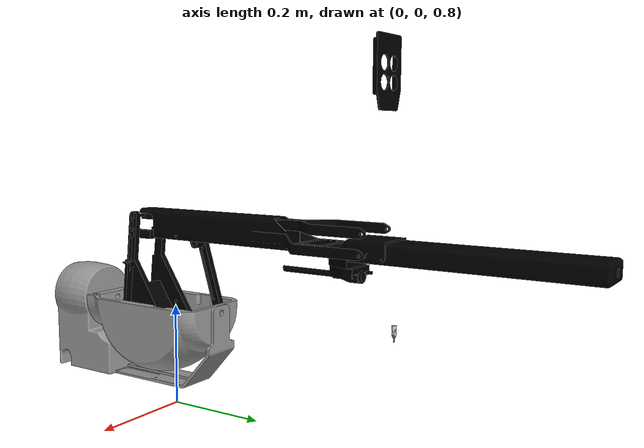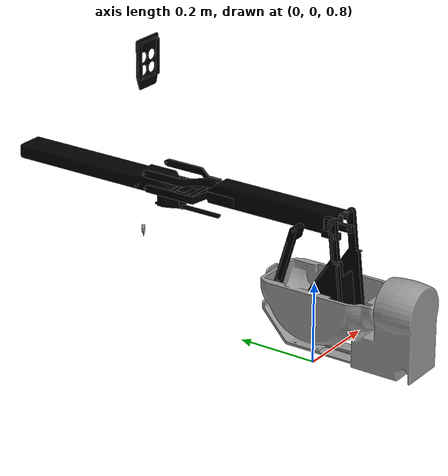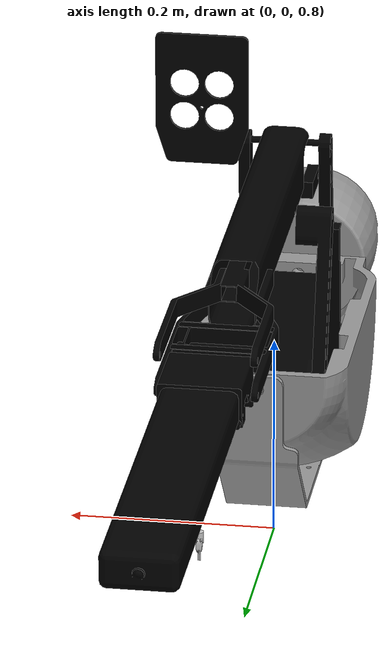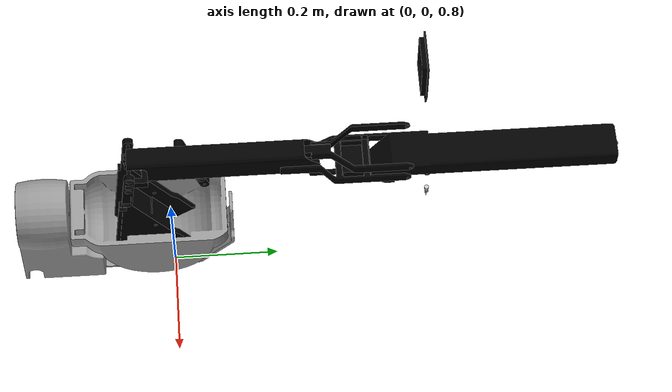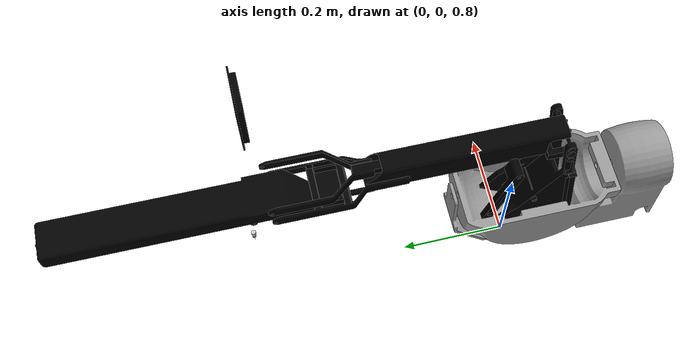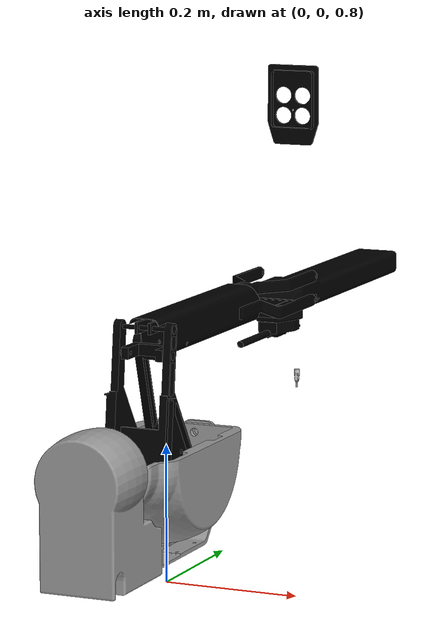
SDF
<sdf version="1.6">
  <model name="dvrk_psm">

  <include>
    <uri>model://psm</uri>
      <name>psm1</name>
      <pose> 0 0 1 0 0 0</pose>
  </include>

  <joint name='psm1::rev_joint' type='fixed'>
   <child>psm1::base_link</child>
   <parent>world</parent>
   <axis>
     <limit>
       <lower>-1.57</lower>
       <upper>1.57</upper>
     </limit>
     <dynamics>
       <damping>0</damping>
     </dynamics>
     <xyz>0 0 1</xyz>
   </axis>
 </joint>

 <plugin name='dvrk_plugins' filename='libdvrk_plugins.so'/>
 </model>
</sdf>

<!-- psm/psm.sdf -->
<sdf version='1.6'>
  <model name='psm'>
    <link name='base_link'>
      <pose frame=''>0 0 0 0 -0 0</pose>
      <inertial>
        <pose frame=''>-0 -0.17016 -0.085607 0 -0 0</pose>
        <mass>2.0161</mass>
        <inertia>
          <ixx>0.03342853</ixx>
          <ixy>0.00942520</ixy>
          <ixz>-0.00334012</ixz>
          <iyy>0</iyy>
          <iyz>0</iyz>
          <izz>0.02897334</izz>
        </inertia>
      </inertial>
      <collision name='base_link_collision'>
        <pose frame=''>0 0 0 0 -0 0</pose>
        <geometry>
          <mesh>
            <scale>1 1 1</scale>
            <uri>model://psm/meshes/base_link.STL</uri>
          </mesh>
        </geometry>
      </collision>
      <visual name='base_link_visual'>
        <pose frame=''>0 0 0 0 -0 0</pose>
        <geometry>
          <mesh>
            <scale>1 1 1</scale>
            <uri>model://psm/meshes/base_link.STL</uri>
          </mesh>
        </geometry>
        <material>
          <ambient>0.6 0.6 0.6 1</ambient>
          <diffuse>0.6 0.6 0.6 1</diffuse>
          <specular>0.1 0.1 0.1 1</specular>
          <emissive>0 0 0 1</emissive>
        </material>
      </visual>
    </link>
    <link name='yaw_Link'>
      <pose frame=''>0 0 0 -1.57079 -1.57079 3.14159</pose>
      <inertial>
        <pose frame=''>-0.038769 7.8e-05 0.041596 0 -0 0</pose>
        <mass>1.4705</mass>
        <inertia>
          <ixx>0.01814321</ixx>
          <ixy>0.0000043</ixy>
          <ixz>0.00000728</ixz>
          <iyy>0.0157145</iyy>
          <iyz>-0.00048589</iyz>
          <izz>0.00824930</izz>
        </inertia>
      </inertial>
      <collision name='yaw_Link_collision'>
        <pose frame=''>0 0 0 0 -0 0</pose>
        <geometry>
          <mesh>
            <scale>1 1 1</scale>
            <uri>model://psm/meshes/yaw_Link.STL</uri>
          </mesh>
        </geometry>
      </collision>
      <visual name='yaw_Link_visual'>
        <pose frame=''>0 0 0 0 -0 0</pose>
        <geometry>
          <mesh>
            <scale>1 1 1</scale>
            <uri>model://psm/meshes/yaw_Link.STL</uri>
          </mesh>
        </geometry>
        <material>
          <ambient>0.6 0.6 0.6 1</ambient>
          <diffuse>0.6 0.6 0.6 1</diffuse>
          <specular>0.1 0.1 0.1 1</specular>
          <emissive>0 0 0 1</emissive>
        </material>
      </visual>
    </link>
    <joint name='yaw_joint' type='revolute'>
      <child>yaw_Link</child>
      <parent>base_link</parent>
      <axis>
        <xyz>-4e-06 1 -0</xyz>
        <limit>
          <lower>-1.605</lower>
          <upper>1.5994</upper>
          <effort>1000</effort>
          <velocity>10</velocity>
        </limit>
        <dynamics>
          <spring_reference>0</spring_reference>
          <spring_stiffness>0</spring_stiffness>
        </dynamics>
        <use_parent_model_frame>1</use_parent_model_frame>
      </axis>
    </joint>
    <link name='pitch_back_Link'>
      <pose frame=''>0 -0.0296 0 1.57081 -1.28007 -1.5708</pose>
      <inertial>
        <pose frame=''>-0.011651 -0.036241 3.6e-05 0 -0 0</pose>
        <mass>0.7</mass>
        <inertia>
          <ixx>0.00202417</ixx>
          <ixy>0.00047511</ixy>
          <ixz>0.00000043</ixz>
          <iyy>0.00564963</iyy>
          <iyz>0.00000129</iyz>
          <izz>0.00564716</izz>
        </inertia>
      </inertial>
      <collision name='pitch_back_Link_collision'>
        <pose frame=''>0 0 0 0 -0 0</pose>
        <geometry>
          <mesh>
            <scale>1 1 1</scale>
            <uri>model://psm/meshes/pitch_back_Link.STL</uri>
          </mesh>
        </geometry>
      </collision>
      <visual name='pitch_back_Link_visual'>
        <pose frame=''>0 0 0 0 -0 0</pose>
        <geometry>
          <mesh>
            <scale>1 1 1</scale>
            <uri>model://psm/meshes/pitch_back_Link.STL</uri>
          </mesh>
        </geometry>
        <material>
          <ambient>0 0 0 1</ambient>
          <diffuse>0 0 0 1</diffuse>
          <specular>0.8 0.8 0.8 1</specular>
          <emissive>0 0 0 1</emissive>
        </material>
      </visual>
    </link>
    <joint name='pitch_back_joint' type='revolute'>
      <child>pitch_back_Link</child>
      <parent>yaw_Link</parent>
      <axis>
        <xyz>-1 -0 -3e-06</xyz>
        <limit>
          <lower>-0.93556</lower>
          <upper>0.94249</upper>
          <effort>1000</effort>
          <velocity>10</velocity>
        </limit>
        <dynamics>
          <spring_reference>0</spring_reference>
          <spring_stiffness>0</spring_stiffness>
        </dynamics>
        <use_parent_model_frame>1</use_parent_model_frame>
      </axis>
    </joint>
    <link name='pitch_bottom_Link'>
      <pose frame=''>-0 -0.072598 0.143705 -1.5708 -2.6e-05 1.5708</pose>
      <inertial>
        <pose frame=''>0.25683 -0.010348 -6e-06 0 -0 0</pose>
        <mass>0.44569</mass>
        <inertia>
          <ixx>0.00045979</ixx>
          <ixy>-0.00031801</ixy>
          <ixz>0.00000003</ixz>
          <iyy>0.01127103</iyy>
          <iyz>-0.00000040</iyz>
          <izz>0.01110239</izz>
        </inertia>
      </inertial>
      <collision name='pitch_bottom_Link_collision'>
        <pose frame=''>0 0 0 0 -0 0</pose>
        <geometry>
          <mesh>
            <scale>1 1 1</scale>
            <uri>model://psm/meshes/pitch_bottom_Link.STL</uri>
          </mesh>
        </geometry>
      </collision>
      <visual name='pitch_bottom_Link_visual'>
        <pose frame=''>0 0 0 0 -0 0</pose>
        <geometry>
          <mesh>
            <scale>1 1 1</scale>
            <uri>model://psm/meshes/pitch_bottom_Link.STL</uri>
          </mesh>
        </geometry>
        <material>
          <ambient>0 0 0 1</ambient>
          <diffuse>0 0 0 1</diffuse>
          <specular>0.8 0.8 0.8 1</specular>
          <emissive>0 0 0 1</emissive>
        </material>
      </visual>
    </link>
    <joint name='pitch_bottom_joint' type='revolute'>
      <child>pitch_bottom_Link</child>
      <parent>pitch_back_Link</parent>
      <axis>
        <xyz>-1 -0 -3e-06</xyz>
        <limit>
          <lower>-0.94249</lower>
          <upper>0.93556</upper>
          <effort>1000</effort>
          <velocity>10</velocity>
        </limit>
        <dynamics>
          <spring_reference>0</spring_reference>
          <spring_stiffness>0</spring_stiffness>
        </dynamics>
        <use_parent_model_frame>1</use_parent_model_frame>
      </axis>
    </joint>
    <link name='pitch_end_Link'>
      <pose frame=''>-0 0.443402 0.143719 -1.5708 -2.6e-05 1.5708</pose>
      <inertial>
        <pose frame=''>-0.001929 -0.13613 -0 0 -0 0</pose>
        <mass>0.355</mass>
        <inertia>
          <ixx>0.03784466</ixx>
          <ixy>-0.00123970</ixy>
          <ixz>0.00000002</ixz>
          <iyy>0.00156905</iyy>
          <iyz>0</iyz>
          <izz>0.03227453</izz>
        </inertia>
      </inertial>
      <collision name='pitch_end_Link_collision'>
        <pose frame=''>0 0 0 0 -0 0</pose>
        <geometry>
          <mesh>
            <scale>1 1 1</scale>
            <uri>model://psm/meshes/pitch_end_Link.STL</uri>
          </mesh>
        </geometry>
      </collision>
      <visual name='pitch_end_Link_visual'>
        <pose frame=''>0 0 0 0 -0 0</pose>
        <geometry>
          <mesh>
            <scale>1 1 1</scale>
            <uri>model://psm/meshes/pitch_end_Link.STL</uri>
          </mesh>
        </geometry>
        <material>
          <ambient>0 0 0 1</ambient>
          <diffuse>0 0 0 1</diffuse>
          <specular>0.8 0.8 0.8 1</specular>
          <emissive>0 0 0 1</emissive>
        </material>
      </visual>
    </link>
    <joint name='pitch_end_joint' type='revolute'>
      <child>pitch_end_Link</child>
      <parent>pitch_bottom_Link</parent>
      <axis>
        <xyz>-1 -0 -3e-06</xyz>
        <limit>
          <lower>-0.93556</lower>
          <upper>0.94249</upper>
          <effort>1000</effort>
          <velocity>10</velocity>
        </limit>
        <dynamics>
          <spring_reference>0</spring_reference>
          <spring_stiffness>0</spring_stiffness>
        </dynamics>
        <use_parent_model_frame>1</use_parent_model_frame>
      </axis>
    </joint>
    <link name='main_insertion_Link'>
      <pose frame=''>-1e-06 0.486395 0.43181 -3.14159 1.9e-05 -1.5708</pose>
      <inertial>
        <pose frame=''>0.004056 -0.000109 0.009862 0 -0 0</pose>
        <mass>0.22491</mass>
        <inertia>

          <ixx>0.01</ixx>
          <ixy>-0.00001</ixy>
          <ixz>0.00001</ixz>
          <iyy>0.001</iyy>
          <iyz>0.00001</iyz>
          <izz>0.001</izz>
        </inertia>
      </inertial>
      <collision name='main_insertion_Link_collision'>
        <pose frame=''>0 0 0 0 -0 0</pose>
        <geometry>
          <mesh>
            <scale>1 1 1</scale>
            <uri>model://psm/meshes/main_insertion_Link.STL</uri>
          </mesh>
        </geometry>
      </collision>
      <visual name='main_insertion_Link_visual'>
        <pose frame=''>0 0 0 0 -0 0</pose>
        <geometry>
          <mesh>
            <scale>1 1 1</scale>
            <uri>model://psm/meshes/main_insertion_Link.STL</uri>
          </mesh>
        </geometry>
        <material>
          <ambient>0 0 0 1</ambient>
          <diffuse>0 0 0 1</diffuse>
          <specular>0.8 0.8 0.8 1</specular>
          <emissive>0 0 0 1</emissive>
        </material>
      </visual>
    </link>
    <joint name='main_insertion_joint' type='prismatic'>
      <child>main_insertion_Link</child>
      <parent>pitch_end_Link</parent>
      <axis>
        <xyz>-6e-06 -1.9e-05 -1</xyz>
        <limit>
          <lower>0</lower>
          <upper>0.24</upper>
          <effort>1000</effort>
          <velocity>1</velocity>
        </limit>
        <dynamics>
          <spring_reference>0</spring_reference>
          <spring_stiffness>0</spring_stiffness>
        </dynamics>
        <use_parent_model_frame>1</use_parent_model_frame>
      </axis>
    </joint>
    <link name='tool_roll_link'>
      <pose frame=''>2e-06 0.486403 0.01561 3.14159 -1.9e-05 1.57079</pose>
      <inertial>
        <pose frame=''>-0 -0 -0.005823 0 -0 0</pose>
        <mass>0.012491</mass>
        <inertia>
          <ixx>0.001</ixx>
          <ixy>0.00001</ixy>
          <ixz>0.00001</ixz>
          <iyy>0.001</iyy>
          <iyz>0.00001</iyz>
          <izz>0.001</izz>
        </inertia>
      </inertial>
      <collision name='tool_roll_link_collision'>
        <pose frame=''>0 0 0 0 -0 0</pose>
        <geometry>
          <mesh>
            <scale>1 1 1</scale>
            <uri>model://psm/meshes/tool_roll_link.STL</uri>
          </mesh>
        </geometry>
      </collision>
      <visual name='tool_roll_link_visual'>
        <pose frame=''>0 0 0 0 -0 0</pose>
        <geometry>
          <mesh>
            <scale>1 1 1</scale>
            <uri>model://psm/meshes/tool_roll_link.STL</uri>
          </mesh>
        </geometry>
        <material>
          <ambient>0.8 0.8 0.8 1</ambient>
          <diffuse>0.8 0.8 0.8 1</diffuse>
          <specular>1 1 1 1</specular>
          <emissive>0 0 0 1</emissive>
        </material>
      </visual>
    </link>
    <joint name='tool_roll_joint' type='revolute'>
      <child>tool_roll_link</child>
      <parent>main_insertion_Link</parent>
      <axis>
        <xyz>-6e-06 -1.9e-05 -1</xyz>
        <limit>
          <lower>-3.14159</lower>
          <upper>3.14159</upper>
          <effort>1000</effort>
          <velocity>10</velocity>
        </limit>
        <dynamics>
          <spring_reference>0</spring_reference>
          <spring_stiffness>0</spring_stiffness>
        </dynamics>
        <use_parent_model_frame>1</use_parent_model_frame>
      </axis>
    </joint>
    <link name='tool_pitch_link'>
      <pose frame=''>2e-06 0.486403 0.01561 -1.96086 1.57078 1.18072</pose>
      <inertial>
        <pose frame=''>0.003576 -0 4e-06 0 -0 0</pose>
        <mass>0.012491</mass>
        <inertia>

          <ixx>0.001</ixx>
          <ixy>0.00001</ixy>
          <ixz>0.00001</ixz>
          <iyy>0.001</iyy>
          <iyz>0.00001</iyz>
          <izz>0.001</izz>
        </inertia>
      </inertial>
      <collision name='tool_pitch_link_collision'>
        <pose frame=''>0 0 0 0 -0 0</pose>
        <geometry>
          <mesh>
            <scale>1 1 1</scale>
            <uri>model://psm/meshes/tool_pitch_link.STL</uri>
          </mesh>
        </geometry>
      </collision>
      <visual name='tool_pitch_link_visual'>
        <pose frame=''>0 0 0 0 -0 0</pose>
        <geometry>
          <mesh>
            <scale>1 1 1</scale>
            <uri>model://psm/meshes/tool_pitch_link.STL</uri>
          </mesh>
        </geometry>
        <material>
          <ambient>0.8 0.8 0.8 1</ambient>
          <diffuse>0.8 0.8 0.8 1</diffuse>
          <specular>1 1 1 1</specular>
          <emissive>0 0 0 1</emissive>
        </material>
      </visual>
    </link>
    <joint name='tool_pitch_joint' type='revolute'>
      <child>tool_pitch_link</child>
      <parent>tool_roll_link</parent>
      <axis>
        <xyz>1 -1.1e-05 6e-06</xyz>
        <limit>
          <lower>-1.5708</lower>
          <upper>1.5708</upper>
          <effort>1000</effort>
          <velocity>10</velocity>
        </limit>
        <dynamics>
          <spring_reference>0</spring_reference>
          <spring_stiffness>0</spring_stiffness>
        </dynamics>
        <use_parent_model_frame>1</use_parent_model_frame>
      </axis>
    </joint>
    <link name='tool_yaw_link'>
      <pose frame=''>2e-06 0.486403 0.00651 1.57078 3e-06 3.14158</pose>
      <inertial>
        <pose frame=''>-0 -0 -5e-05 0 -0 0</pose>
        <mass>0.012491</mass>
        <inertia>
          <ixx>0.001</ixx>
          <ixy>0.00001</ixy>
          <ixz>0.00001</ixz>
          <iyy>0.001</iyy>
          <iyz>0.00001</iyz>
          <izz>0.001</izz>
        </inertia>
      </inertial>
      <collision name='tool_yaw_link_collision'>
        <pose frame=''>0 0 0 0 -0 0</pose>
        <geometry>
          <mesh>
            <scale>1 1 1</scale>
            <uri>model://psm/meshes/tool_yaw_link.STL</uri>
          </mesh>
        </geometry>
      </collision>
      <visual name='tool_yaw_link_visual'>
        <pose frame=''>0 0 0 0 -0 0</pose>
        <geometry>
          <mesh>
            <scale>1 1 1</scale>
            <uri>model://psm/meshes/tool_yaw_link.STL</uri>
          </mesh>
        </geometry>
        <material>
          <ambient>0.8 0.8 0.8 1</ambient>
          <diffuse>0.8 0.8 0.8 1</diffuse>
          <specular>1 1 1 1</specular>
          <emissive>0 0 0 1</emissive>
        </material>
      </visual>
    </link>
    <joint name='tool_yaw_joint' type='revolute'>
      <child>tool_yaw_link</child>
      <parent>tool_pitch_link</parent>
      <axis>
        <xyz>1.1e-05 1 1.2e-05</xyz>
        <limit>
          <lower>-1.5708</lower>
          <upper>1.5708</upper>
          <effort>1000</effort>
          <velocity>10</velocity>
        </limit>
        <dynamics>
          <spring_reference>0</spring_reference>
          <spring_stiffness>0</spring_stiffness>
        </dynamics>
        <use_parent_model_frame>1</use_parent_model_frame>
      </axis>
    </joint>

    <link name='tool_gripper1_link'>
      <pose frame=''>2e-06 0.486403 0.00651 1.57078 3.14158 3.14158</pose>
      <inertial>
        <pose frame=''>0.000196 0.001435 -0.000885 0 -0 0</pose>
        <mass>0.010491</mass>

        <inertia>
          <ixx>0.001</ixx>
          <ixy>0.00001</ixy>
          <ixz>0.00001</ixz>
          <iyy>0.001</iyy>
          <iyz>0.00001</iyz>
          <izz>0.001</izz>
        </inertia>
      </inertial>
      <collision name='tool_gripper1_link_collision'>
        <pose frame=''>0 0 0 0 -0 0</pose>
        <geometry>
          <mesh>
            <scale>1 1 1</scale>
            <uri>model://psm/meshes/tool_gripper1_link.STL</uri>
          </mesh>
        </geometry>
      </collision>
      <visual name='tool_gripper1_link_visual'>
        <pose frame=''>0 0 0 0 -0 0</pose>
        <geometry>
          <mesh>
            <scale>1 1 1</scale>
            <uri>model://psm/meshes/tool_gripper1_link.STL</uri>
          </mesh>
        </geometry>
        <material>
          <ambient>0.8 0.8 0.8 1</ambient>
          <diffuse>0.8 0.8 0.8 1</diffuse>
          <specular>1 1 1 1</specular>
          <emissive>0 0 0 1</emissive>
        </material>
      </visual>
    </link>
    <joint name='tool_gripper1_joint' type='revolute'>
      <child>tool_gripper1_link</child>
      <parent>tool_yaw_link</parent>
      <axis>
        <xyz>1.1e-05 -1 1.2e-05</xyz>
        <limit>
          <lower>0</lower>
          <upper>1</upper>
          <effort>0</effort>
          <velocity>0</velocity>
        </limit>
        <dynamics>
          <spring_reference>0</spring_reference>
          <spring_stiffness>0</spring_stiffness>
        </dynamics>
        <use_parent_model_frame>1</use_parent_model_frame>
      </axis>
    </joint>
    <link name='tool_gripper2_link'>
      <pose frame=''>2e-06 0.486403 0.00651 1.57078 3.14158 3.14158</pose>
      <inertial>
        <pose frame=''>-0.000196 0.001435 0.000885 0 -0 0</pose>
        <mass>0.010491</mass>
        <inertia>
          <ixx>0.001</ixx>
          <ixy>0.00001</ixy>
          <ixz>0.00001</ixz>
          <iyy>0.001</iyy>
          <iyz>0.00001</iyz>
          <izz>0.001</izz>
        </inertia>
      </inertial>
      <collision name='tool_gripper2_link_collision'>
        <pose frame=''>0 0 0 0 -0 0</pose>
        <geometry>
          <mesh>
            <scale>1 1 1</scale>
            <uri>model://psm/meshes/tool_gripper2_link.STL</uri>
          </mesh>
        </geometry>
      </collision>
      <visual name='tool_gripper2_link_visual'>
        <pose frame=''>0 0 0 0 -0 0</pose>
        <geometry>
          <mesh>
            <scale>1 1 1</scale>
            <uri>model://psm/meshes/tool_gripper2_link.STL</uri>
          </mesh>
        </geometry>
        <material>
          <ambient>0.8 0.8 0.8 1</ambient>
          <diffuse>0.8 0.8 0.8 1</diffuse>
          <specular>1 1 1 1</specular>
          <emissive>0 0 0 1</emissive>
        </material>
      </visual>
    </link>
    <joint name='tool_gripper2_joint' type='revolute'>
      <child>tool_gripper2_link</child>
      <parent>tool_yaw_link</parent>
      <axis>
        <xyz>1.1e-05 1 1.2e-05</xyz>
        <limit>
          <lower>0</lower>
          <upper>1</upper>
          <effort>0</effort>
          <velocity>0</velocity>
        </limit>
        <dynamics>
          <spring_reference>0</spring_reference>
          <spring_stiffness>0</spring_stiffness>
        </dynamics>
        <use_parent_model_frame>1</use_parent_model_frame>
      </axis>
    </joint>
    <link name='pitch_top_Link'>
      <pose frame=''>-0 -0.068718 0.18 -1.5708 -2.6e-05 1.5708</pose>
      <inertial>
        <pose frame=''>0.31246 -0.000566 -0 0 -0 0</pose>
        <mass>0.17841</mass>
        <inertia>
          <ixx>0.00014989</ixx>
          <ixy>0.00001128</ixy>
          <ixz>0</ixz>
          <iyy>0.00463460</iyy>
          <iyz>0</iyz>
          <izz>0.00449516</izz>
        </inertia>
      </inertial>
      <collision name='pitch_top_Link_collision'>
        <pose frame=''>0 0 0 0 -0 0</pose>
        <geometry>
          <mesh>
            <scale>1 1 1</scale>
            <uri>model://psm/meshes/pitch_top_Link.STL</uri>
          </mesh>
        </geometry>
      </collision>
      <visual name='pitch_top_Link_visual'>
        <pose frame=''>0 0 0 0 -0 0</pose>
        <geometry>
          <mesh>
            <scale>1 1 1</scale>
            <uri>model://psm/meshes/pitch_top_Link.STL</uri>
          </mesh>
        </geometry>
        <material>
          <ambient>0 0 0 1</ambient>
          <diffuse>0 0 0 1</diffuse>
          <specular>0.8 0.8 0.8 1</specular>
          <emissive>0 0 0 1</emissive>
        </material>
      </visual>
    </link>
    <joint name='pitch_top_joint' type='revolute'>
      <child>pitch_top_Link</child>
      <parent>pitch_back_Link</parent>
      <axis>
        <xyz>-1 -0 -3e-06</xyz>
        <limit>
          <lower>-0.94249</lower>
          <upper>0.93556</upper>
          <effort>1000</effort>
          <velocity>10</velocity>
        </limit>
        <dynamics>
          <spring_reference>0</spring_reference>
          <spring_stiffness>0</spring_stiffness>
        </dynamics>
        <use_parent_model_frame>1</use_parent_model_frame>
      </axis>
    </joint>
    <link name='pitch_front_Link'>
      <pose frame=''>-0 0.0664 -0 1.57081 -1.28007 -1.5708</pose>
      <inertial>
        <pose frame=''>0.096269 0 0.047551 0 -0 0</pose>
        <mass>0.074425</mass>
        <inertia>
          <ixx>0.00000876</ixx>
          <ixy>0</ixy>
          <ixz>-0.00001711</ixz>
          <iyy>0.00022654</iyy>
          <iyz>0</iyz>
          <izz>00.00022322</izz>
        </inertia>
      </inertial>
      <collision name='pitch_front_Link_collision'>
        <pose frame=''>0 0 0 0 -0 0</pose>
        <geometry>
          <mesh>
            <scale>1 1 1</scale>
            <uri>model://psm/meshes/pitch_front_Link.STL</uri>
          </mesh>
        </geometry>
      </collision>
      <visual name='pitch_front_Link_visual'>
        <pose frame=''>0 0 0 0 -0 0</pose>
        <geometry>
          <mesh>
            <scale>1 1 1</scale>
            <uri>model://psm/meshes/pitch_front_Link.STL</uri>
          </mesh>
        </geometry>
        <material>
          <ambient>0 0 0 1</ambient>
          <diffuse>0 0 0 1</diffuse>
          <specular>0.8 0.8 0.8 1</specular>
          <emissive>0 0 0 1</emissive>
        </material>
      </visual>
    </link>
    <joint name='pitch_front_joint' type='revolute'>
      <child>pitch_front_Link</child>
      <parent>yaw_Link</parent>
      <axis>
        <xyz>-1 -0 -3e-06</xyz>
        <limit>
          <lower>-0.93556</lower>
          <upper>0.94249</upper>
          <effort>1000</effort>
          <velocity>10</velocity>
        </limit>
        <dynamics>
          <spring_reference>0</spring_reference>
          <spring_stiffness>0</spring_stiffness>
        </dynamics>
        <use_parent_model_frame>1</use_parent_model_frame>
      </axis>
    </joint>

    <joint name='pitch_front_bottom_joint' type='revolute'>
      <pose>0.096 0 0 0 0 0 </pose>
      <child>pitch_bottom_Link</child>
      <parent>pitch_front_Link</parent>
      <axis>
        <xyz>-1 0 0</xyz>
        <limit>
          <lower>-0.93556</lower>
          <upper>0.94249</upper>
          <effort>1000</effort>
          <velocity>1</velocity>
        </limit>
        <dynamics>
          <spring_reference>0</spring_reference>
          <spring_stiffness>0</spring_stiffness>
        </dynamics>
        <use_parent_model_frame>1</use_parent_model_frame>
      </axis>
    </joint>

    <joint name='pitch_top_end_joint' type='revolute'>
      <pose>0.00388 -0.036293189  0 0 0 0 </pose>
      <child>pitch_end_Link</child>
      <parent>pitch_top_Link</parent>
      <axis>
        <xyz>-1 0 0</xyz>
        <limit>
          <lower>-0.93556</lower>
          <upper>0.94249</upper>
          <effort>1000</effort>
          <velocity>1</velocity>
        </limit>
        <dynamics>
          <spring_reference>0</spring_reference>
          <spring_stiffness>0</spring_stiffness>
        </dynamics>
        <use_parent_model_frame>1</use_parent_model_frame>
      </axis>
    </joint>
  </model>
</sdf>
